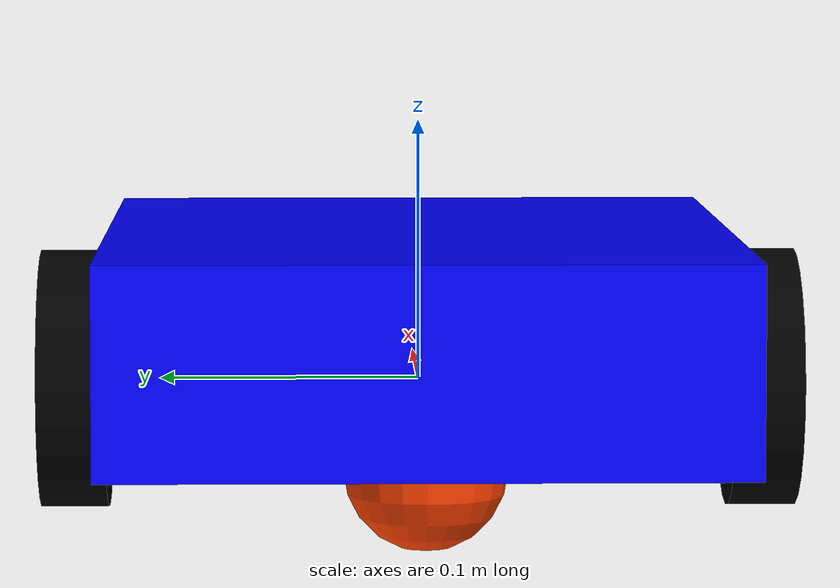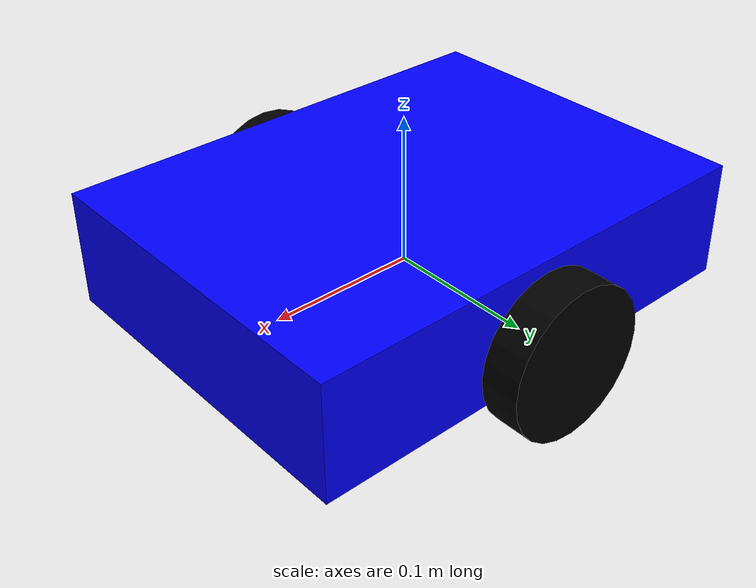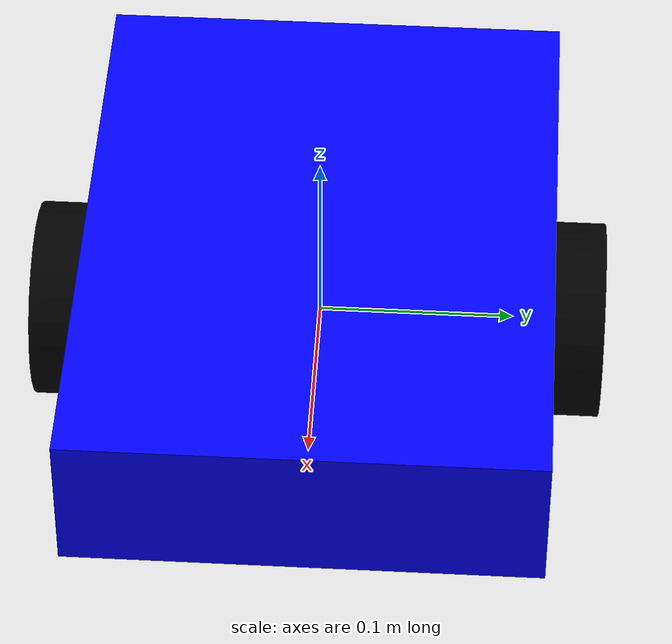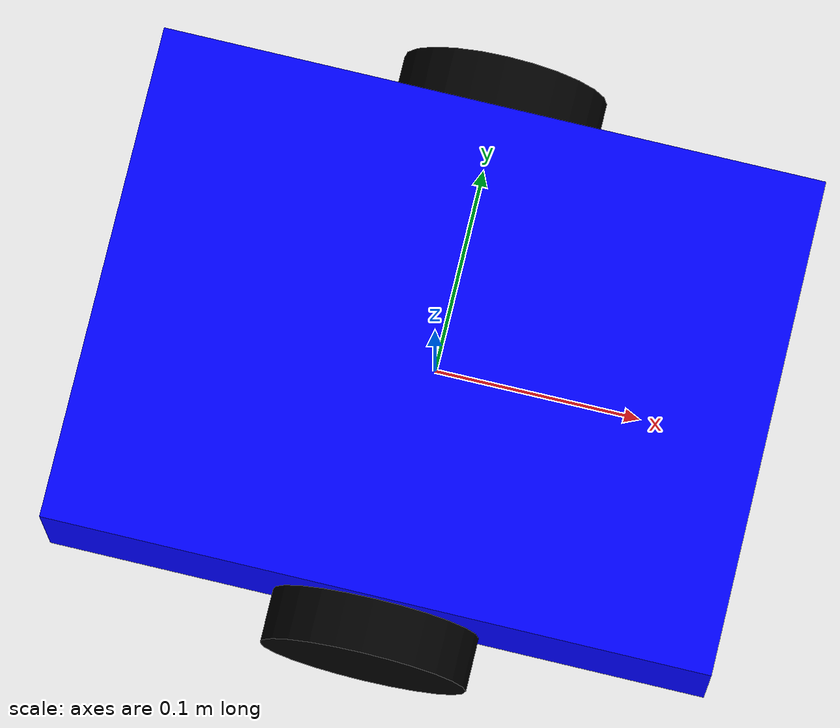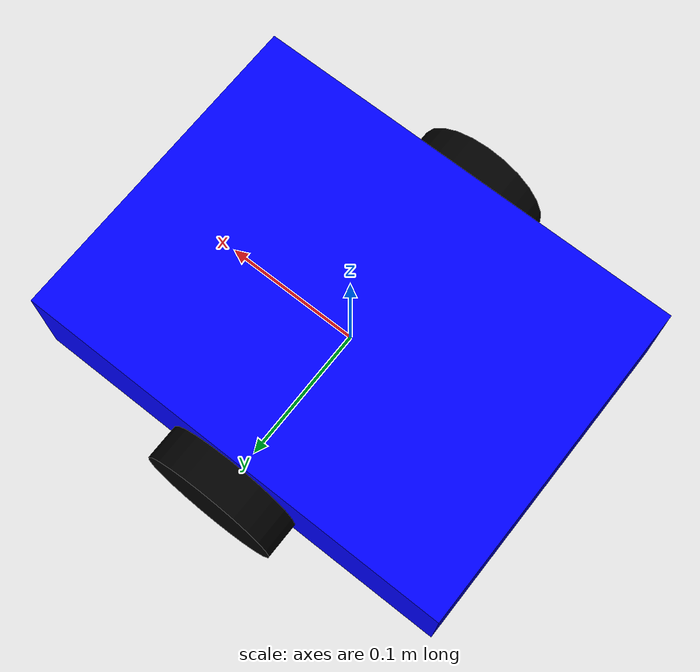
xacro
<?xml version="1.0"?>
<robot xmlns:xacro="http://www.ros.org/wiki/xacro">

    <xacro:include filename = "inertial_macros.xacro" />

    <xacro:property name="chassis_length"           value="0.320"/>
    <xacro:property name="chassis_width"            value="0.240"/>
    <xacro:property name="chassis_height"           value="0.078"/>
    <xacro:property name="chassis_mass"             value="0.700"/>

    <xacro:property name="wheel_radius"             value="0.05"/>
    <xacro:property name="wheel_thickness"          value="0.026"/>
    <xacro:property name="wheel_mass"               value="0.050"/>
    <xacro:property name="wheel_offset_x"           value="${chassis_length/2}"/>
    <xacro:property name="wheel_offset_y"           value="0.133"/>
    <xacro:property name="wheel_offset_z"           value="0.020"/>

    <xacro:property name="caster_wheel_radius"      value="${wheel_radius - wheel_offset_z}"/>
    <xacro:property name="caster_wheel_mass"        value="0.010"/>
    <!-- inset from each chassis edge by (caster radius + margin) so the caster stays hidden under the body -->
    <xacro:property name="caster_wheel_margin"      value="0.01"/>
    <xacro:property name="caster_wheel_offset_front" value="${chassis_length - caster_wheel_radius - caster_wheel_margin}"/>
    <xacro:property name="caster_wheel_offset_rear"  value="${caster_wheel_radius + caster_wheel_margin}"/>

    <!-- Colors -->
    <material name="white">
        <color rgba= "1 1 1 1"/>
    </material>

    <material name="black">
        <color rgba= "0 0 0 1"/>
    </material>

    <material name= "orange">
        <color rgba= "1 0.25 0 1"/>
    </material>

    <material name="cyan">
        <color rgba= "0 1 1 1"/>
    </material>

    <material name="indigo">
        <color rgba= "0.294 0 0.51 1"/>
    </material>

    <material name="blue">
        <color rgba= "0 0 1 1"/>
    </material>

    <!-- convention (except base_link): joint followed by link -->
    <!-- base_link -->
    <link name="base_link">
    </link>

    <!-- base_footprint -->
    <joint name="base_footprint_joint" type="fixed">
        <parent link= "base_link"/>
        <child link= "base_footprint"/>
        <origin xyz= "0 0 0" rpy= "0 0 0"/>
    </joint>

    <link name="base_footprint">
    </link>

    <!-- chasis -->
    <joint name="chasis_joint" type="fixed">
        <parent link= "base_link"/>
        <child link= "chasis"/>
        <origin xyz= "${-wheel_offset_x} 0 ${-wheel_offset_z}"/>
    </joint>

    <link name="chasis">
        <visual>
            <origin xyz= "${chassis_length/2} 0 ${chassis_height/2}" rpy= "0 0 0"/>
            <geometry>
                <box size = "${chassis_length} ${chassis_width} ${chassis_height}"/>
            </geometry>
            <material name= "blue"/>
        </visual>
        <collision>
            <origin xyz= "${chassis_length/2} 0 ${chassis_height/2}" rpy= "0 0 0"/>
            <geometry>
                <box size = "${chassis_length} ${chassis_width} ${chassis_height}"/>
            </geometry>
        </collision>
        <xacro:inertial_box mass= "0.5" x="${chassis_length}" y="${chassis_width}" z="${chassis_height}">
            <origin xyz= "${chassis_length/2} 0 ${chassis_height/2}" rpy= "0 0 0"/>
        </xacro:inertial_box>
    </link>

    <gazebo reference="chasis">
        <material>
            <ambient>0 0 1 1</ambient>
            <diffuse>0 0 1 1</diffuse>
        </material>
    </gazebo>

    <!-- left_wheel -->
    <joint name="left_wheel_joint" type="continuous">
        <parent link= "base_link"/>
        <child link= "left_wheel"/>
        <origin xyz= "0 ${wheel_offset_y} 0" rpy = "${-pi/2} 0 0"/>
        <axis xyz= "0 0 1"/>
    </joint>

    <link name="left_wheel">
        <visual>
            <geometry>
                <cylinder radius = "${wheel_radius}" length= "${wheel_thickness}"/>
            </geometry>
            <material name= "black"/>
        </visual>
        <collision>
            <geometry>
                <sphere radius = "${wheel_radius}" />
            </geometry>
        </collision>
        <xacro:inertial_cylinder mass = "${wheel_mass}" radius= "${wheel_radius}" length= "${wheel_thickness}">
            <origin xyz= "0 0 0" rpy= "0 0 0"/>
        </xacro:inertial_cylinder>
    </link>

    <gazebo reference="left_wheel">
        <material>
            <ambient>0 0 0 1</ambient>
            <diffuse>0 0 0 1</diffuse>
        </material>
    </gazebo>

    <!-- right_wheel -->
    <joint name="right_wheel_joint" type="continuous">
        <parent link= "base_link"/>
        <child link= "right_wheel"/>
        <origin xyz= "0 ${-wheel_offset_y} 0" rpy = "${-pi/2} 0 0"/>
        <axis xyz= "0 0 1"/>
    </joint>

    <link name="right_wheel">
        <visual>
            <geometry>
                <cylinder radius = "${wheel_radius}" length= "${wheel_thickness}"/>
            </geometry>
            <material name= "black"/>
        </visual>
        <collision>
            <geometry>
                <sphere radius = "${wheel_radius}" />
            </geometry>
        </collision>
        <xacro:inertial_cylinder mass = "${wheel_mass}" radius= "${wheel_radius}" length= "${wheel_thickness}">
            <origin xyz= "0 0 0" rpy= "0 0 0"/>
        </xacro:inertial_cylinder>
    </link>

    <gazebo reference="right_wheel">
        <material>
            <ambient>0 0 0 1</ambient>
            <diffuse>0 0 0 1</diffuse>
        </material>
    </gazebo>

    <!-- caster_wheel_front -->
    <joint name="caster_wheel_front_joint" type="fixed">
        <parent link= "chasis"/>
        <child link= "caster_wheel_front"/>
        <origin xyz= "${caster_wheel_offset_front} 0 0"/>
    </joint>

    <link name="caster_wheel_front">
        <visual>
            <geometry>
                <sphere radius = "${caster_wheel_radius}"/>
            </geometry>
            <material name= "orange"/>
        </visual>
        <collision>
            <geometry>
                <sphere radius = "${caster_wheel_radius}"/>
            </geometry>
        </collision>
        <xacro:inertial_sphere mass= "${caster_wheel_mass}" radius= "${caster_wheel_radius}">
            <origin xyz= "0 0 0" rpy= "0 0 0"/>
        </xacro:inertial_sphere>
    </link>

    <gazebo reference="caster_wheel_front">
        <material>
            <ambient>1 0.25 0 1</ambient>
            <diffuse>1 0.25 0 1</diffuse>
        </material>
        <mu1 value= "0.0001"/>
        <mu2 value= "0.0001"/>
    </gazebo>

    <!-- caster_wheel_rear -->
    <joint name="caster_wheel_rear_joint" type="fixed">
        <parent link= "chasis"/>
        <child link= "caster_wheel_rear"/>
        <origin xyz= "${caster_wheel_offset_rear} 0 0"/>
    </joint>

    <link name="caster_wheel_rear">
        <visual>
            <geometry>
                <sphere radius = "${caster_wheel_radius}"/>
            </geometry>
            <material name= "orange"/>
        </visual>
        <collision>
            <geometry>
                <sphere radius = "${caster_wheel_radius}"/>
            </geometry>
        </collision>
        <xacro:inertial_sphere mass= "${caster_wheel_mass}" radius= "${caster_wheel_radius}">
            <origin xyz= "0 0 0" rpy= "0 0 0"/>
        </xacro:inertial_sphere>
    </link>

    <gazebo reference="caster_wheel_rear">
        <material>
            <ambient>1 0.25 0 1</ambient>
            <diffuse>1 0.25 0 1</diffuse>
        </material>
        <mu1 value= "0.0001"/>
        <mu2 value= "0.0001"/>
    </gazebo>

</robot>
